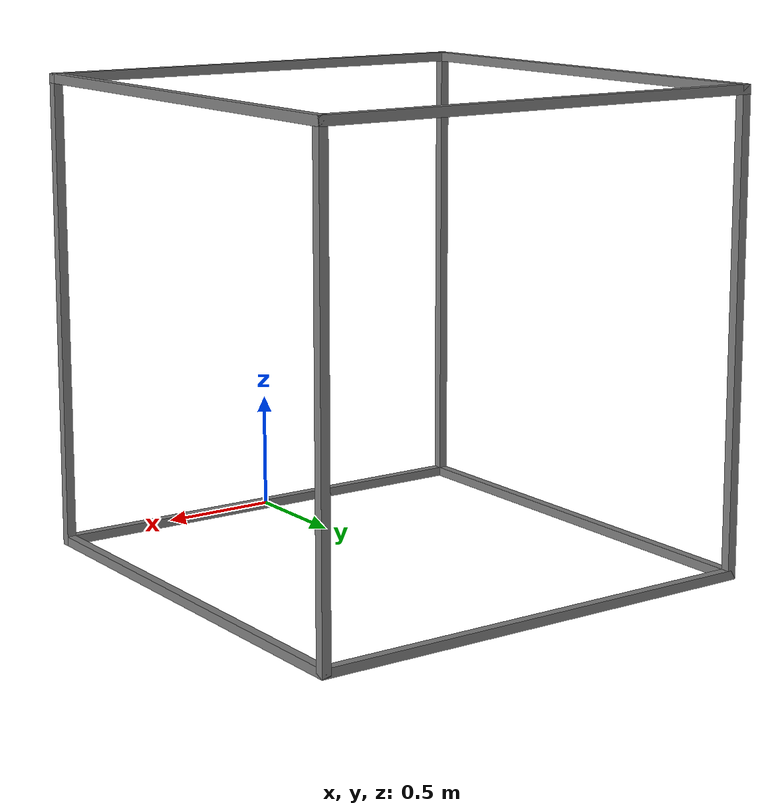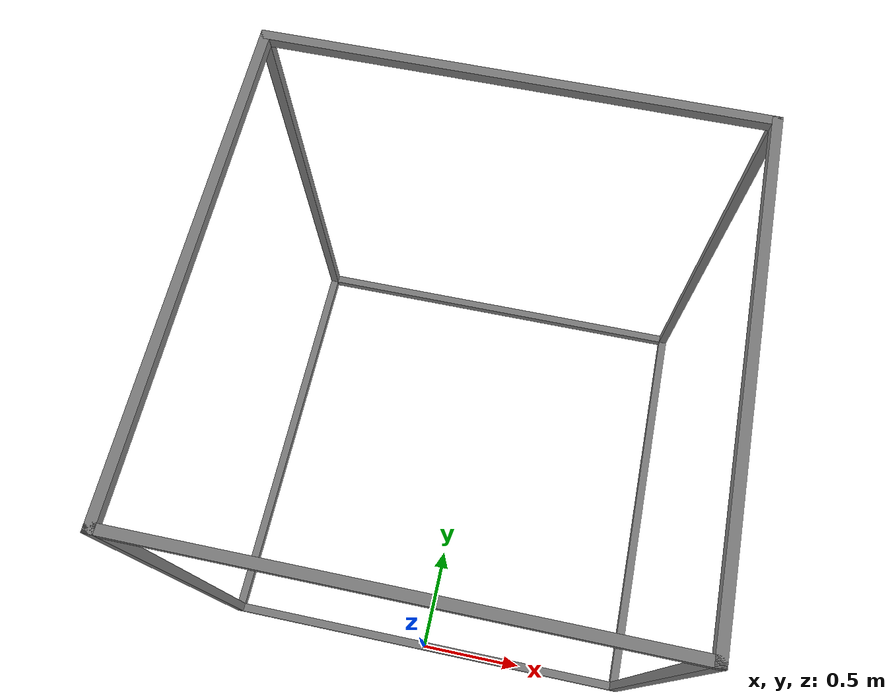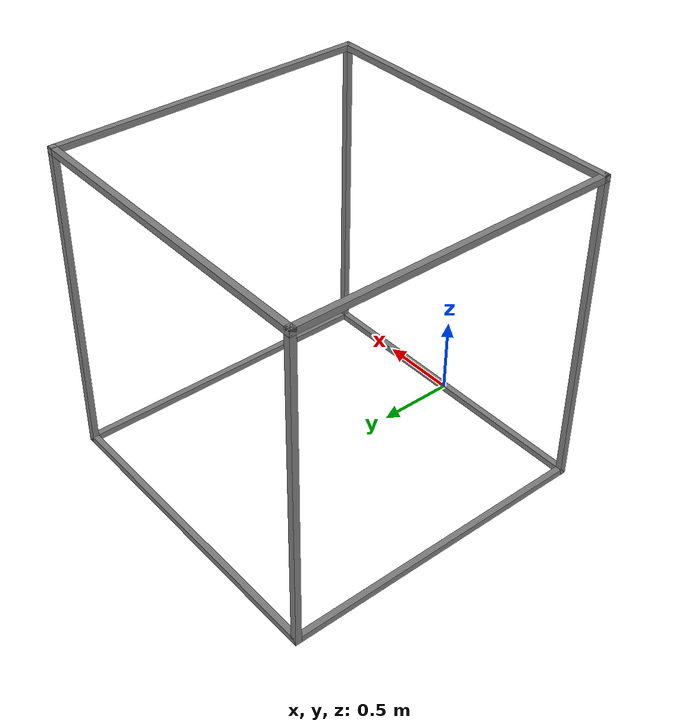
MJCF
<!-- Rig Model -->

<mujoco model="rig">
  <default>
    <geom type="box" rgba="0.5 0.5 0.5 1" size="0.02 1.02 0.02"/>
  </default>
  <worldbody>
    <body name="rig" quat="1 0 0 1">
      <inertial mass="100" pos="0 0 0"/>
      <geom name="front_bottom" pos="0 0 0" quat="1 0 1 0"/>
      <geom name="front_top" pos="0 0 2" quat="1 0 1 0"/>
      <geom name="front_left" pos="0 1 1" quat="1 1 0 0"/>
      <geom name="front_right" pos="0 -1 1" quat="1 1 0 0"/>
      <geom name="back_bottom" pos="2 0 0" quat="1 0 1 0"/>
      <geom name="back_top" pos="2 0 2" quat="1 0 1 0"/>
      <geom name="back_left" pos="2 1 1" quat="1 1 0 0"/>
      <geom name="back_right" pos="2 -1 1" quat="1 1 0 0"/>
      <geom name="depth_top_left" pos="1 -1 0" quat="0 1 1 0"/>
      <geom name="depth_top_right" pos="1 -1 2" quat="0 1 1 0"/>
      <geom name="depth_bottom_left" pos="1 1 0" quat="0 1 1 0"/>
      <geom name="depth_bottom_right" pos="1 1 2" quat="0 1 1 0"/>
    </body>
  </worldbody>
</mujoco>
